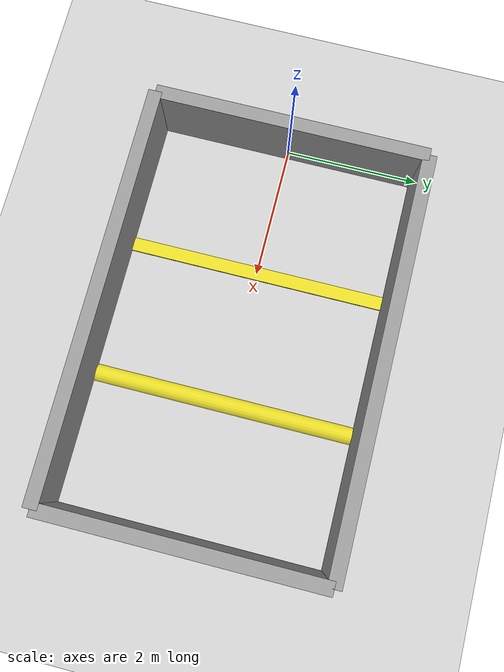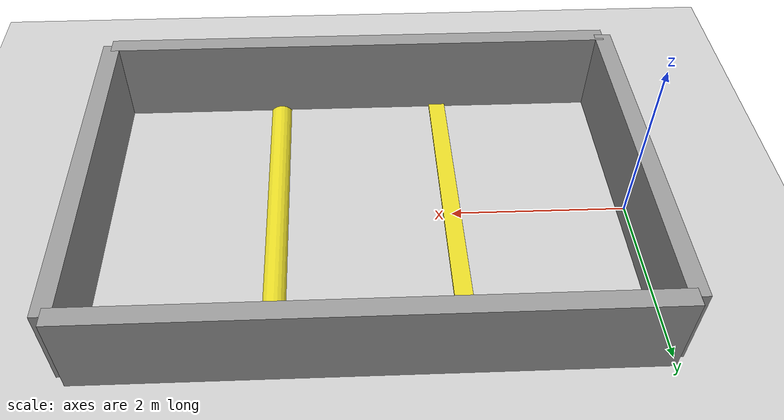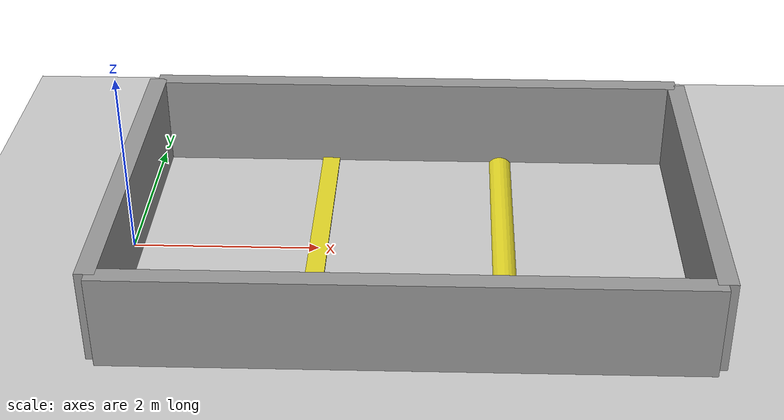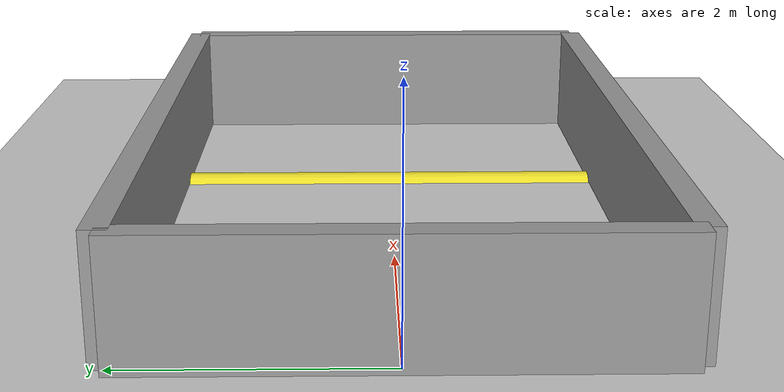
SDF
<?xml version="1.0" ?>
<sdf version="1.6">
  <world name="speedbump_world">

    <!-- 1. Include the Sun for lighting -->
    <include>
      <uri>model://sun</uri>
    </include>

    <!-- 2. Include the Floor -->
    <include>
      <uri>model://ground_plane</uri>
    </include>

    <!-- 3. Surrounding Box Walls -->
    <model name="surrounding_walls">
      <static>true</static>

      <!-- Tường phía Bắc (Y = 2.0) -->
      <link name="wall_north">
        <pose>3.0 2.0 0.5 0 0 0</pose>
        <collision name="collision">
          <geometry><box><size>6.0 0.2 1.0</size></box></geometry>
        </collision>
        <visual name="visual">
          <geometry><box><size>6.0 0.2 1.0</size></box></geometry>
          <material>
            <script>
              <uri>file://media/materials/scripts/gazebo.material</uri>
              <name>Gazebo/Grey</name>
            </script>
          </material>
        </visual>
      </link>

      <!-- Tường phía Nam (Y = -2.0) -->
      <link name="wall_south">
        <pose>3.0 -2.0 0.5 0 0 0</pose>
        <collision name="collision">
          <geometry><box><size>6.0 0.2 1.0</size></box></geometry>
        </collision>
        <visual name="visual">
          <geometry><box><size>6.0 0.2 1.0</size></box></geometry>
          <material>
            <script>
              <uri>file://media/materials/scripts/gazebo.material</uri>
              <name>Gazebo/Grey</name>
            </script>
          </material>
        </visual>
      </link>

      <!-- Tường phía Đông (X = 6.0) -->
      <link name="wall_east">
        <pose>6.0 0.0 0.5 0 0 0</pose>
        <collision name="collision">
          <geometry><box><size>0.2 4.0 1.0</size></box></geometry>
        </collision>
        <visual name="visual">
          <geometry><box><size>0.2 4.0 1.0</size></box></geometry>
          <material>
            <script>
              <uri>file://media/materials/scripts/gazebo.material</uri>
              <name>Gazebo/Grey</name>
            </script>
          </material>
        </visual>
      </link>

      <!-- Tường phía Tây (X = 0.0) -->
      <link name="wall_west">
        <pose>0.0 0.0 0.5 0 0 0</pose>
        <collision name="collision">
          <geometry><box><size>0.2 4.0 1.0</size></box></geometry>
        </collision>
        <visual name="visual">
          <geometry><box><size>0.2 4.0 1.0</size></box></geometry>
          <material>
            <script>
              <uri>file://media/materials/scripts/gazebo.material</uri>
              <name>Gazebo/Grey</name>
            </script>
          </material>
        </visual>
      </link>
    </model>

    <!-- 4. Your Custom Speed Bump (Box) -->
    <model name="speed_bump_1">
      <static>true</static>
      <pose>2.0 0.0 0.015 0 0 0</pose>
      <link name="link">
        <collision name="collision">
          <geometry>
            <box>
              <!-- Thay đổi 2.0 thành 4.0 -->
              <size>0.2 4.0 0.03</size>
            </box>
          </geometry>
        </collision>
        <visual name="visual">
          <geometry>
            <box>
              <!-- Thay đổi 2.0 thành 4.0 -->
              <size>0.2 4.0 0.03</size>
            </box>
          </geometry>
          <material>
            <script>
              <uri>file://media/materials/scripts/gazebo.material</uri>
              <name>Gazebo/Yellow</name>
            </script>
          </material>
        </visual>
      </link>
    </model>

    <!-- 5. Tall Speed Bump 2 (Cylinder) -->
    <model name="tall_speed_bump_2">
      <static>true</static>
      <pose>4.0 0.0 -0.09 1.5708 0 0</pose>
      <link name="link">
        <collision name="collision">
          <geometry>
            <cylinder>
              <radius>0.15</radius>
              <!-- Thay đổi 2.0 thành 4.0 -->
              <length>4.0</length>
            </cylinder>
          </geometry>
        </collision>
        <visual name="visual">
          <geometry>
            <cylinder>
              <radius>0.15</radius>
              <!-- Thay đổi 2.0 thành 4.0 -->
              <length>4.0</length>
            </cylinder>
          </geometry>
          <material>
            <script>
              <uri>file://media/materials/scripts/gazebo.material</uri>
              <name>Gazebo/Yellow</name>
            </script>
          </material>
        </visual>
      </link>
    </model>

  </world>
</sdf>
